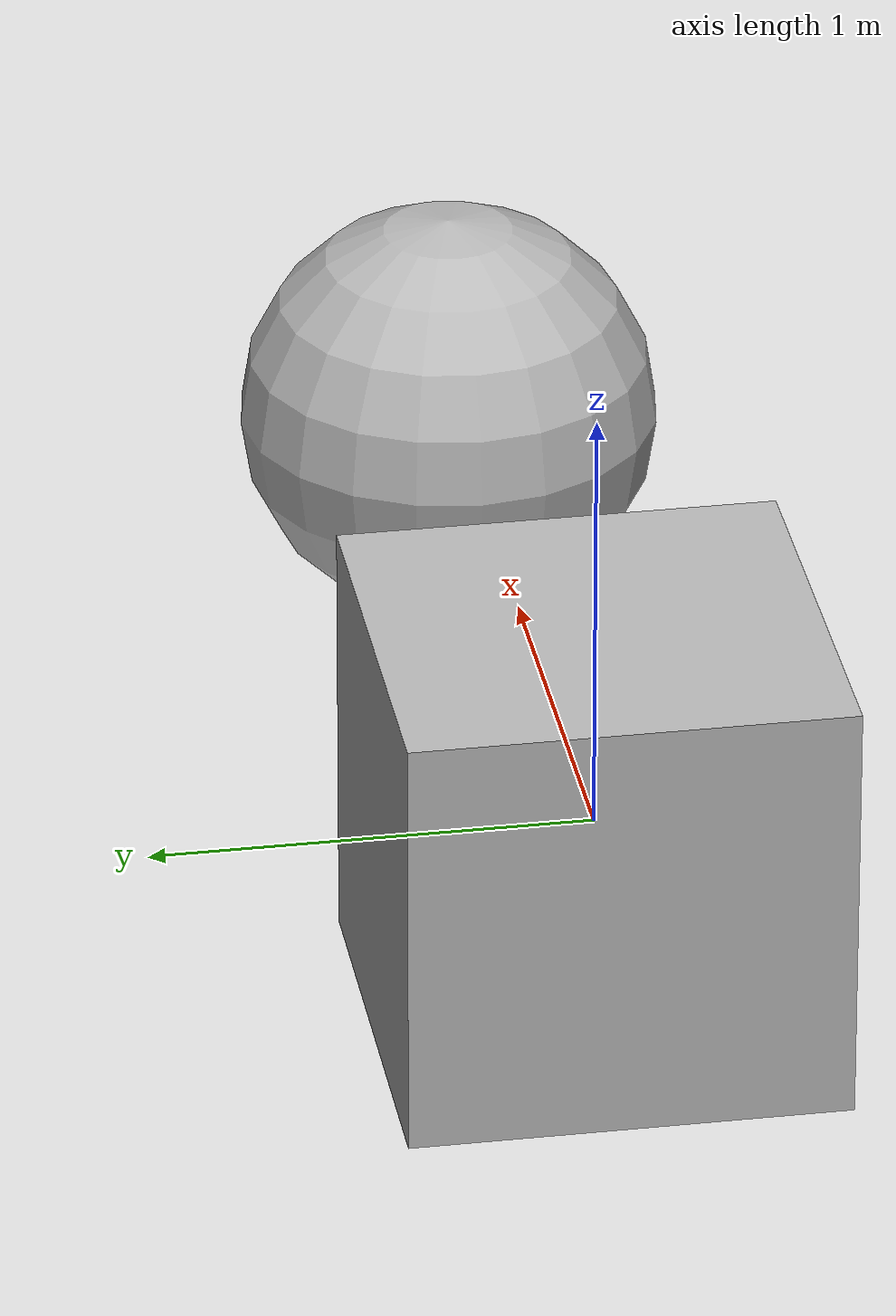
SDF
<?xml version="1.0" ?>
<gazebo version="1.2">
  <world name="default">
    <physics type="ode">
      <gravity>0 0 0</gravity>
      <ode>
        <solver>
          <type>quick</type>
          <dt>0.001</dt>
          <iters>1000</iters>
          <sor>1.3</sor>
        </solver>
        <constraints>
          <cfm>0.0</cfm>
          <erp>1.0</erp>
          <contact_max_correcting_vel>0.0</contact_max_correcting_vel>
          <contact_surface_layer>0.0</contact_surface_layer>
        </constraints>
      </ode>
    </physics>
    <model name="box">
      <pose>0 0 0 0 0 0</pose>
      <link name="link">
        <inertial>
          <inertia>
            <ixx>1</ixx>
            <ixy>0</ixy>
            <ixz>0</ixz>
            <iyy>1</iyy>
            <iyz>0</iyz>
            <izz>1</izz>
          </inertia>
          <mass>1.0</mass>
        </inertial>
        <velocity_decay>
          <linear>0.0</linear>
          <angular>0.0</angular>
        </velocity_decay>
        <collision name="collision">
          <geometry>
            <box>
              <size>1 1 1</size>
            </box>
          </geometry>
          <surface>
            <contact>
              <ode>
                <soft_erp>1</soft_erp>
                <max_vel>0</max_vel>
              </ode>
            </contact>
          </surface>
        </collision>
        <visual name="visual">
          <geometry>
            <box>
              <size>1 1 1</size>
            </box>
          </geometry>
          <material>
            <script>Gazebo/WoodPallet</script>
          </material>
        </visual>
      </link>
    </model>
    <model name="sphere">
      <pose>2 0 0 0 0 0</pose>
      <link name="link">
        <inertial>
          <inertia>
            <ixx>1</ixx>
            <ixy>0</ixy>
            <ixz>0</ixz>
            <iyy>1</iyy>
            <iyz>0</iyz>
            <izz>1</izz>
          </inertia>
          <mass>1.0</mass>
        </inertial>
        <velocity_decay>
          <linear>0.0</linear>
          <angular>0.0</angular>
        </velocity_decay>
        <collision name="collision">
          <geometry>
            <sphere>
              <radius>0.5</radius>
            </sphere>
          </geometry>
          <surface>
            <contact>
              <ode>
                <soft_erp>1</soft_erp>
                <max_vel>0</max_vel>
              </ode>
            </contact>
          </surface>
        </collision>
        <visual name="visual">
          <geometry>
            <sphere>
              <radius>0.5</radius>
            </sphere>
          </geometry>
          <material>
            <script>Gazebo/WoodPallet</script>
          </material>
        </visual>
      </link>
    </model>
    <light type="directional" name="sun">
      <pose>0 0 10 0 0 0</pose>
      <diffuse>.8 .8 .8 1</diffuse>
      <specular>.1 .1 .1 1</specular>
      <attenuation>
        <range>10</range>
        <linear>0.01</linear>
        <constant>0.8</constant>
        <quadratic>0.0</quadratic>
      </attenuation>
      <direction>0 .5 -.5</direction>
      <cast_shadows>true</cast_shadows>
    </light>
  </world>
</gazebo>
